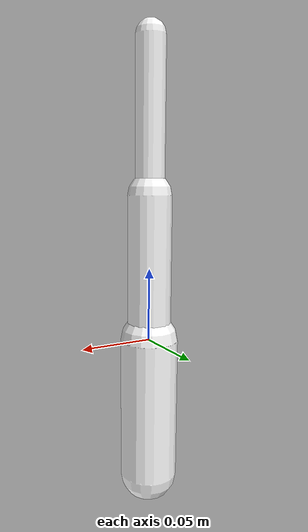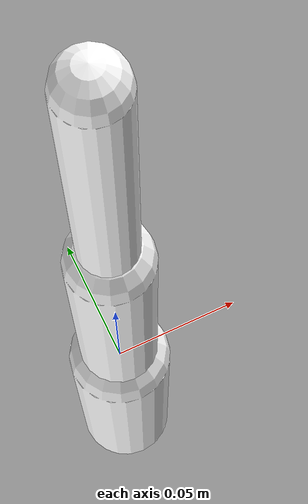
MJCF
<mujoco>
    <!-- simple, two-joint "robot arm" -->
    <compiler angle="degree"/>
    <default>
        <joint limited="true" range="-90 90" damping="0.1" axis="0 1 0" type="hinge"/>
        <geom type="capsule" size="0.02" rgba="1 1 1 1"/>
    </default>
    <worldbody>
        <geom name="base" fromto="0 0 -0.1 0 0 0"/>
        <body name="proximal">
            <joint name="proximal"/>
            <geom name="proximal" fromto="0 0 0 0 0 0.1" size="0.015"/>
            <body name="distal" pos="0 0 0.1">
                <joint name="distal"/>
                <geom name="distal" fromto="0 0 0 0 0 0.1" size="0.01"/>
            </body>
        </body>
    </worldbody>
    <actuator>
        <motor name="proximal" joint="proximal"/>
        <motor name="distal" joint="distal"/>
    </actuator>
</mujoco>
